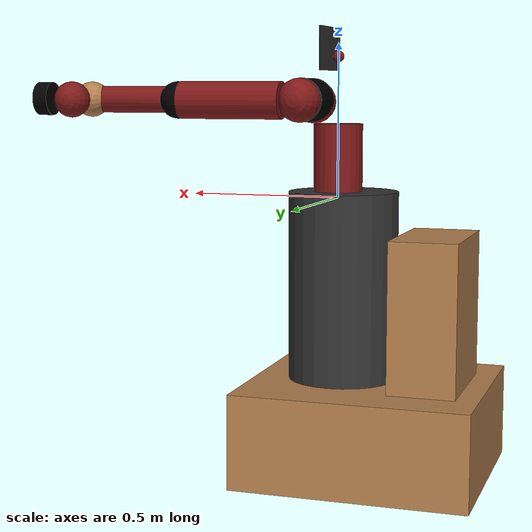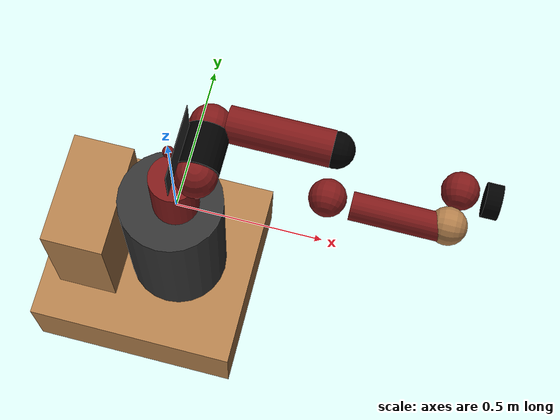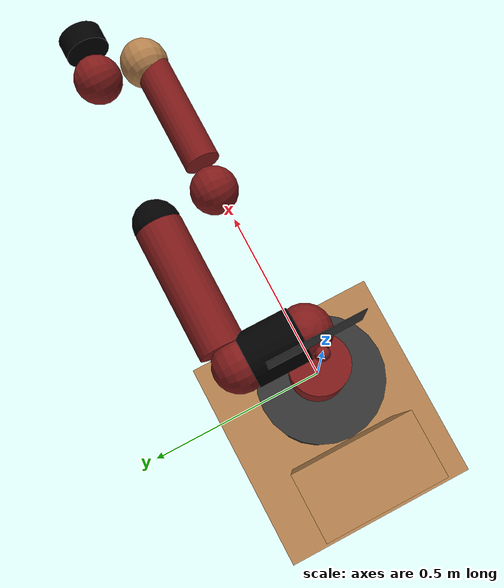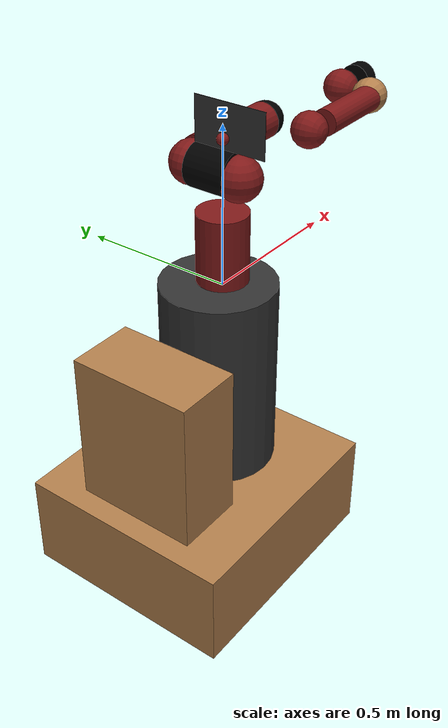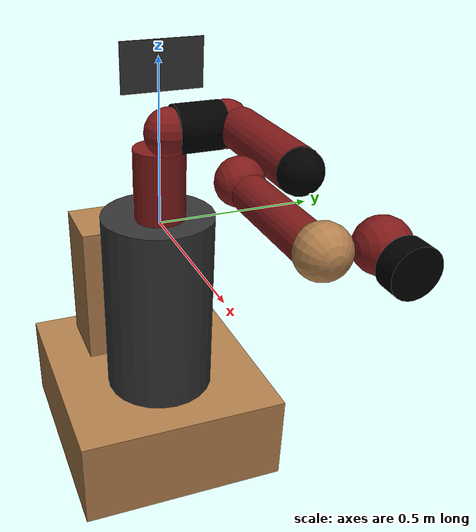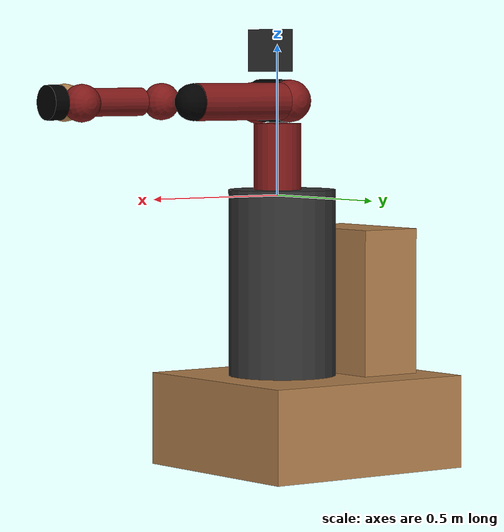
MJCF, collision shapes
<mujoco model="sawyer">
  <actuator>
    <!-- Mujoco does not have velocity limit in actuator :( -->
    <velocity ctrllimited="true" ctrlrange="-1.74 1.74" joint="right_j0" kv="8.0" name="vel_right_j0"/>
        <velocity ctrllimited="true" ctrlrange="-1.328 1.328" joint="right_j1" kv="7.0" name="vel_right_j1"/>
        <velocity ctrllimited="true" ctrlrange="-1.957 1.957" joint="right_j2" kv="6.0" name="vel_right_j2"/>
        <velocity ctrllimited="true" ctrlrange="-1.957 1.957" joint="right_j3" kv="4.0" name="vel_right_j3"/>
        <velocity ctrllimited="true" ctrlrange="-3.485 3.485" joint="right_j4" kv="2.0" name="vel_right_j4"/>
        <velocity ctrllimited="true" ctrlrange="-3.485 3.485" joint="right_j5" kv="0.5" name="vel_right_j5"/>
        <velocity ctrllimited="true" ctrlrange="-4.545 4.545" joint="right_j6" kv="0.1" name="vel_right_j6"/>
  </actuator>
  <asset>
    <texture type="cube" name="texgeom" builtin="flat" width="32" height="192" />
    <material name="geomMat" texture="texgeom" />

     <!-- Custom textures based on body names for domain randomization -->
    <texture type="cube" name="controller_tex" builtin="flat" width="32" height="192" />
    <texture type="cube" name="pedestal_tex" builtin="flat" width="32" height="192" />
    <texture type="cube" name="torso_tex" builtin="flat" width="32" height="192" />
    <texture type="cube" name="arm_tex" builtin="flat" width="32" height="192" />
    <texture type="cube" name="head_tex" builtin="flat" width="32" height="192" />

    <texture file="../../textures/light-wood.png" type="2d" name="tex-light-wood"/>
    <texture file="../../textures/dark-wood.png" type="2d" name="tex-dark-wood"/>
    <material name="light-wood" reflectance="0.5" texrepeat="15 15" texture="tex-light-wood" texuniform="true"/>
    <material name="dark-wood" reflectance="0.5" texrepeat="5 5" texture="tex-dark-wood" texuniform="true"/>
    <material name="floorplane" reflectance="0.5" texrepeat="1 1" texture="texplane" texuniform="true"/>

    <!-- Custom mats based on body names for domain randomization -->
    <material name="controller_mat" texture="tex-dark-wood" />
    <material name="pedestal_mat" texture="tex-dark-wood" />
    <material name="torso_mat" texture="tex-dark-wood" />
    <material name="arm_mat" texture="tex-dark-wood" />
    <material name="head_mat" texture="tex-dark-wood" />

    <mesh file="meshes/pedestal.stl" name="pedestal"/>
    <mesh file="meshes/base.stl" name="base"/>
    <mesh file="meshes/l0.stl" name="l0"/>
    <mesh file="meshes/head.stl" name="head"/>
    <mesh file="meshes/l1.stl" name="l1"/>
    <mesh file="meshes/l2.stl" name="l2"/>
    <mesh file="meshes/l3.stl" name="l3"/>
    <mesh file="meshes/l4.stl" name="l4"/>
    <mesh file="meshes/l5.stl" name="l5"/>
    <mesh file="meshes/l6.stl" name="l6"/>
  </asset>
  <worldbody>
    <body name="base" pos="0 0 0">
      <inertial diaginertia="0 0 0" mass="0" pos="0 0 0"/>
      <body name="controller_box" pos="0 0 0">
        <inertial diaginertia="1.71363 1.27988 0.809981" mass="46.64" pos="-0.325 0 -0.38"/>
        <geom name="controller_box" material="controller_mat" pos="-0.325 0 -0.38" size="0.11 0.2 0.265" type="box"/>
      </body>
      <body name="pedestal_feet" pos="0 0 0">
        <inertial diaginertia="8.16095 9.59375 15.0785" mass="167.09" pos="-0.1225 0 -0.758"/>
        <geom name="pedestal_feet" material="pedestal_mat" pos="-0.1225 0 -0.758" size="0.385 0.35 0.155" type="box"/>
      </body>
      <body name="torso" pos="0 0 0">
        <inertial diaginertia="1e-08 1e-08 1e-08" mass="0.0001" pos="0 0 0"/>
        <geom name="torso" material="torso_mat" conaffinity="0" contype="0" group="1" rgba="0.2 0.2 0.2 1" size="0.05 0.05 0.05" type="box"/>
      </body>
      <body name="pedestal" pos="0 0 0">
        <inertial diaginertia="6.0869 5.81635 4.20915" mass="60.864" pos="0 0 0" quat="0.659267 -0.259505 -0.260945 0.655692"/>
        <geom name="pedestal1" material="pedestal_mat" conaffinity="0" contype="0" group="1" mesh="pedestal" pos="0.26 0.345 -0.91488" quat="0.5 0.5 -0.5 -0.5" rgba="0.2 0.2 0.2 1" type="mesh"/>
        <geom name="pedestal2" material="pedestal_mat" pos="-0.02 0 -0.29" rgba="0.2 0.2 0.2 1" size="0.18 0.31" type="cylinder"/>
      </body>
      <body name="right_arm_base_link" pos="0 0 0">
        <inertial diaginertia="0.00740351 0.00681776 0.00672942" mass="2.0687" pos="-0.0006241 -2.8025e-05 0.065404" quat="-0.209285 0.674441 0.227335 0.670558"/>
        <geom name="right_arm_base_link1" material="arm_mat" conaffinity="0" contype="0" group="1" mesh="base" rgba="0.5 0.1 0.1 1" type="mesh"/>
        <geom name="right_arm_base_link2" material="arm_mat" pos="0 0 0.12" rgba="0.5 0.1 0.1 1" size="0.08 0.12" type="cylinder"/>
        <body name="right_l0" pos="0 0 0.08">
          <inertial diaginertia="0.0651588 0.0510944 0.0186218" mass="5.3213" pos="0.024366 0.010969 0.14363" quat="0.894823 0.00899958 -0.170275 0.412573"/>
          <joint axis="0 0 1" limited="true" name="right_j0" pos="0 0 0" range="-3.0503 3.0503"/>
          <geom name="right_l01" material="arm_mat" conaffinity="0" contype="0" group="1" mesh="l0" rgba="0.5 0.1 0.1 1" type="mesh"/>
          <geom name="right_l02" material="arm_mat" pos="0.08 0 0.23" rgba="0.5 0.1 0.1 1" size="0.07"/>
          <body name="head" pos="0 0 0.2965">
            <inertial diaginertia="0.0118334 0.00827089 0.00496574" mass="1.5795" pos="0.0053207 -2.6549e-05 0.1021" quat="0.999993 7.08405e-05 -0.00359857 -0.000626247"/>
            <joint axis="0 0 1" limited="true" name="head_pan" pos="0 0 0" range="-5.0952 0.9064"/>
            <geom name="head1" material="head_mat" conaffinity="0" contype="0" group="1" mesh="head" rgba="0.5 0.1 0.1 1" type="mesh"/>
            <geom name="head2" material="head_mat" pos="0 0 0.08" rgba="0.5 0.1 0.1 1" size="0.018"/>
            <body name="screen" pos="0.03 0 0.105" quat="0.5 0.5 0.5 0.5">
              <inertial diaginertia="1e-08 1e-08 1e-08" mass="0.0001" pos="0 0 0"/>
              <geom name="screen1" material="head_mat" conaffinity="0" contype="0" group="1" rgba="0.2 0.2 0.2 1" size="0.12 0.07 0.001" type="box"/>
              <geom name="screen2" material="head_mat" rgba="0.2 0.2 0.2 1" size="0.001"/>
            </body>
            <body name="head_camera" pos="0.0228027 0 0.216572" quat="0.342813 -0.618449 0.618449 -0.342813">
              <inertial diaginertia="0 0 0" mass="0" pos="0.0228027 0 0.216572" quat="0.342813 -0.618449 0.618449 -0.342813"/>
            </body>
          </body>
          <body name="right_torso_itb" pos="-0.055 0 0.22" quat="0.707107 0 -0.707107 0">
            <inertial diaginertia="1e-08 1e-08 1e-08" mass="0.0001" pos="0 0 0"/>
          </body>
          <body name="right_l1" pos="0.081 0.05 0.237" quat="0.5 -0.5 0.5 0.5">
            <inertial diaginertia="0.0224339 0.0221624 0.0097097" mass="4.505" pos="-0.0030849 -0.026811 0.092521" quat="0.424888 0.891987 0.132364 -0.0794296"/>
            <joint axis="0 0 1" limited="true" name="right_j1" pos="0 0 0" range="-3.8095 2.2736"/>
            <geom name="right_l11" material="arm_mat" conaffinity="0" contype="0" group="1" mesh="l1" rgba="0.5 0.1 0.1 1" type="mesh"/>
            <geom name="right_l12" material="arm_mat" pos="0 0 0.1225" rgba="0.5 0.1 0.1 1" size="0.07"/>
            <body name="right_l2" pos="0 -0.14 0.1425" quat="0.707107 0.707107 0 0">
              <inertial diaginertia="0.0257928 0.025506 0.00292515" mass="1.745" pos="-0.00016044 -0.014967 0.13582" quat="0.707831 -0.0524761 0.0516007 0.702537"/>
              <joint axis="0 0 1" limited="true" name="right_j2" pos="0 0 0" range="-3.0426 3.0426"/>
              <geom name="right_l21" material="arm_mat" conaffinity="0" contype="0" group="1" mesh="l2" rgba="0.5 0.1 0.1 1" type="mesh"/>
              <geom name="right_l22" material="arm_mat" pos="0 0 0.08" rgba="0.5 0.1 0.1 1" size="0.06 0.17" type="cylinder"/>
              <body name="right_l3" pos="0 -0.042 0.26" quat="0.707107 -0.707107 0 0">
                <inertial diaginertia="0.0102404 0.0096997 0.00369622" mass="2.5097" pos="-0.0048135 -0.0281 -0.084154" quat="0.902999 0.385391 -0.0880901 0.168247"/>
                <joint axis="0 0 1" limited="true" name="right_j3" pos="0 0 0" range="-3.0439 3.0439"/>
                <geom name="right_l31" material="arm_mat" conaffinity="0" contype="0" group="1" mesh="l3" rgba="0.5 0.1 0.1 1" type="mesh"/>
                <geom name="right_l32" material="arm_mat" pos="0 -0.01 -0.12" rgba="0.5 0.1 0.1 1" size="0.06"/>
                <body name="right_l4" pos="0 -0.125 -0.1265" quat="0.707107 0.707107 0 0">
                  <inertial diaginertia="0.0136549 0.0135493 0.00127353" mass="1.1136" pos="-0.0018844 0.0069001 0.1341" quat="0.803612 0.031257 -0.0298334 0.593582"/>
                  <joint axis="0 0 1" limited="true" name="right_j4" pos="0 0 0" range="-2.9761 2.9761"/>
                  <geom name="right_l41" material="arm_mat" conaffinity="0" contype="0" group="1" mesh="l4" rgba="0.5 0.1 0.1 1" type="mesh"/>
                  <geom name="right_l42" material="arm_mat" pos="0 0 0.11" rgba="0.5 0.1 0.1 1" size="0.045 0.15" type="cylinder"/>
                  <body name="right_arm_itb" pos="-0.055 0 0.075" quat="0.707107 0 -0.707107 0">
                    <inertial diaginertia="1e-08 1e-08 1e-08" mass="0.0001" pos="0 0 0"/>
                  </body>
                  <body name="right_l5" pos="0 0.031 0.275" quat="0.707107 -0.707107 0 0">
                    <inertial diaginertia="0.00474131 0.00422857 0.00190672" mass="1.5625" pos="0.0061133 -0.023697 0.076416" quat="0.404076 0.9135 0.0473125 0.00158335"/>
                    <joint axis="0 0 1" limited="true" name="right_j5" pos="0 0 0" range="-2.9761 2.9761" damping="0.2"/>
                    <geom name="right_l51" material="arm_mat" conaffinity="0" contype="0" group="1" mesh="l5" rgba="0.5 0.1 0.1 1" type="mesh"/>
                    <geom name="right_l52" material="arm_mat" pos="0 0 0.1" rgba="0.5 0.1 0.1 1" size="0.06"/>
                    <body name="right_hand_camera" pos="0.039552 -0.033 0.0695" quat="0.707107 0 0.707107 0">
                      <inertial diaginertia="0 0 0" mass="0" pos="0.039552 -0.033 0.0695" quat="0.707107 0 0.707107 0"/>
                    </body>
                    <body name="right_wrist" pos="0 0 0.10541" quat="0.707107 0.707107 0 0">
                      <inertial diaginertia="0 0 0" mass="0" pos="0 0 0.10541" quat="0.707107 0.707107 0 0"/>
                    </body>
                    <body name="right_l6" pos="0 -0.11 0.1053" quat="0.0616248 0.06163 -0.704416 0.704416">
                      <inertial diaginertia="0.000360258 0.000311068 0.000214974" mass="0.3292" pos="-8.0726e-06 0.0085838 -0.0049566" quat="0.479044 0.515636 -0.513069 0.491322"/>
                      <joint axis="0 0 1" limited="true" name="right_j6" pos="0 0 0" range="-4.7124 4.7124" damping="0.1"/>
                      <geom name="right_l61" material="arm_mat" conaffinity="0" contype="0" group="1" mesh="l6" rgba="0 0 0 1" type="mesh"/>
                      <geom name="right_l62" material="arm_mat" pos="0 0.015 -0.01" rgba="0 0 0 1" size="0.055 0.025" type="cylinder"/>
                      <body name="right_hand" pos="0 0 0.0245" quat="0.707105 0 0 0.707108">
                                              <!-- To add gripper -->
                                          </body>
                    </body>
                  </body>
                  <body name="right_l4_2" pos="0 0 0">
                    <inertial diaginertia="1e-08 1e-08 1e-08" mass="1e-08" pos="1e-08 1e-08 1e-08" quat="0.820473 0.339851 -0.17592 0.424708"/>
                    <geom name="right_l4_21" material="arm_mat" pos="0 0.01 0.26" size="0.06"/>
                  </body>
                </body>
              </body>
              <body name="right_l2_2" pos="0 0 0">
                <inertial diaginertia="1e-08 1e-08 1e-08" mass="1e-08" pos="1e-08 1e-08 1e-08" quat="0.820473 0.339851 -0.17592 0.424708"/>
                <geom name="right_l2_21" material="arm_mat" pos="0 0 0.26" size="0.06" rgba="0 0 0 1"/>
              </body>
            </body>
            <body name="right_l1_2" pos="0 0 0">
              <inertial diaginertia="1e-08 1e-08 1e-08" mass="1e-08" pos="1e-08 1e-08 1e-08" quat="0.820473 0.339851 -0.17592 0.424708"/>
              <geom name="right_l1_21" material="arm_mat" pos="0 0 0.035" size="0.07 0.07" type="cylinder" rgba="0 0 0 1"/>
            </body>
          </body>
        </body>
      </body>
    </body>
  </worldbody>
</mujoco>
